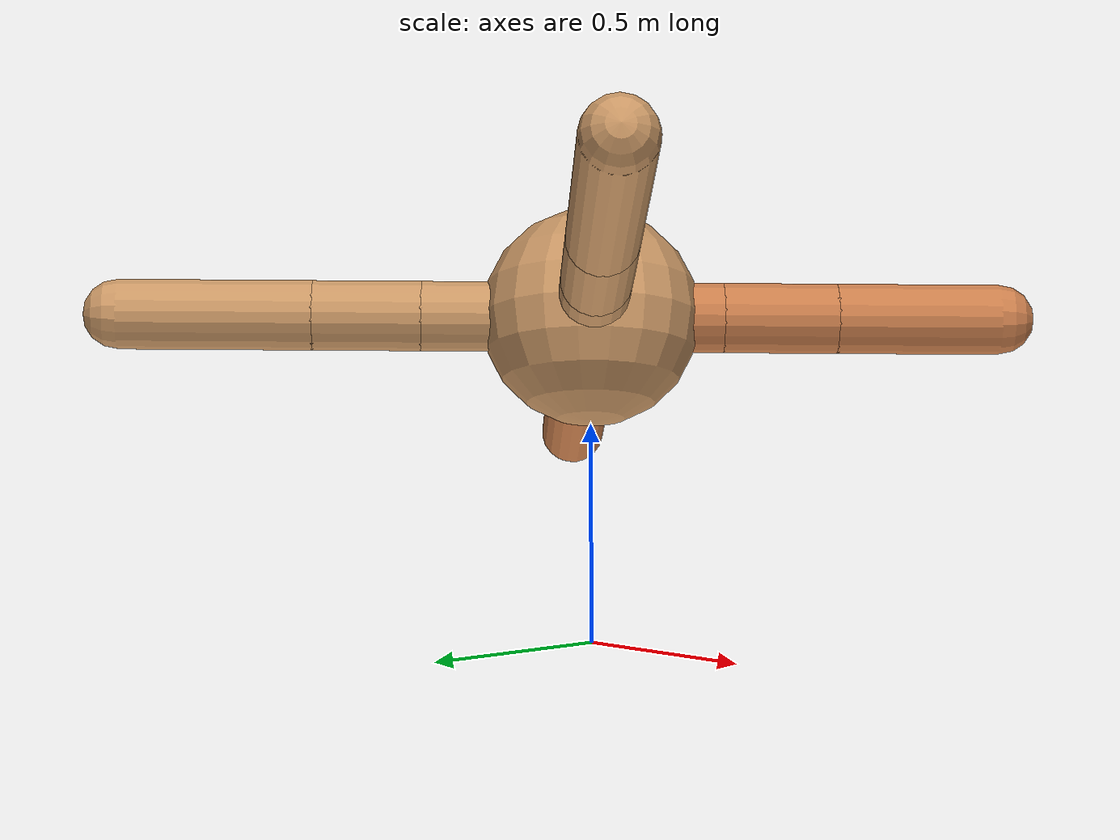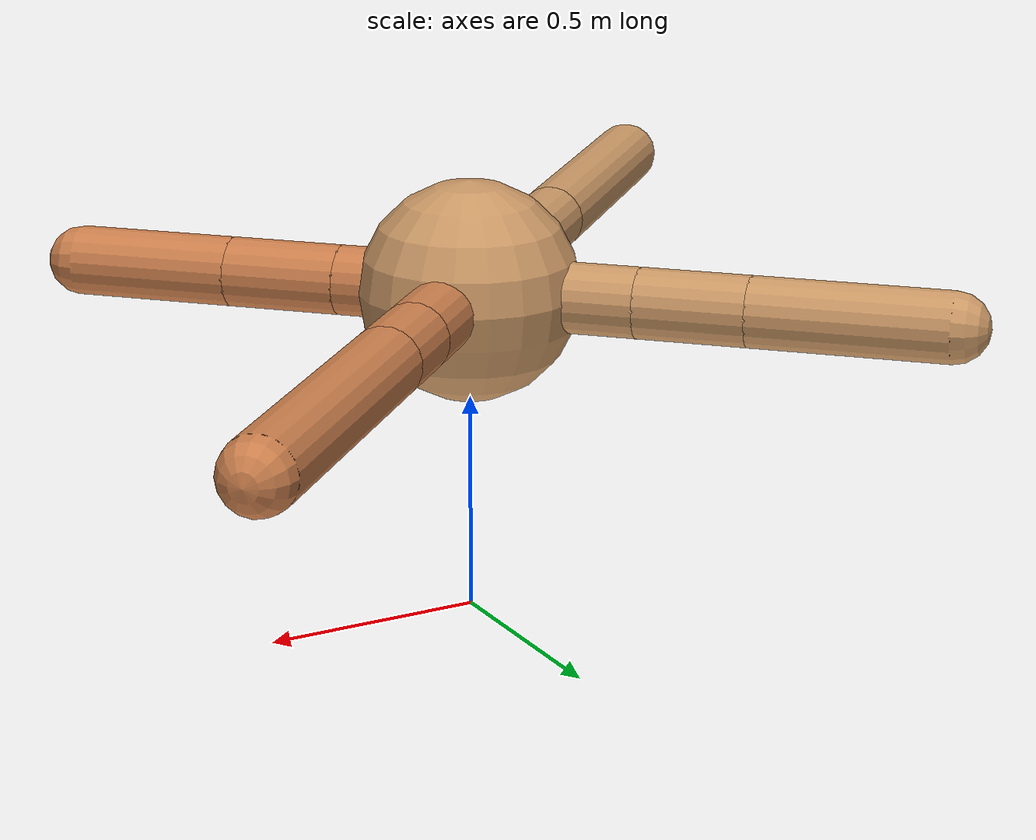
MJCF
<mujoco model="ant">
  <compiler angle="degree" coordinate="local" inertiafromgeom="true" />
  <option integrator="RK4" timestep="0.01" />
  <custom>
    <numeric data="0.0 0.0 0.55 1.0 0.0 0.0 0.0 0.0 1.0 0.0 -1.0 0.0 -1.0 0.0 1.0" name="init_qpos" />
  </custom>
  <default>
    <joint armature="1" damping="1" limited="true" />
    <geom conaffinity="0" condim="3" density="5.0" friction="1.5 0.1 0.1" margin="0.01" rgba="0.8 0.6 0.4 1" />
  </default>
  <worldbody>
    <body name="torso" pos="0 0 0.75">
      <geom name="torso_geom" pos="0 0 0" size="0.25" type="sphere" />

      <body name="front_left_leg" pos="0 0 0">
        <geom fromto="0.0 0.0 0.0 0.28372176741105315 0.28372176741105315 0.0" name="aux_1_geom" size="0.08" type="capsule" rgba=".8 .5 .3 1" />
        <body name="aux_1" pos="0.28372176741105315 0.28372176741105315 0.0">
          <joint axis="0 0 1" name="hip_1" pos="0.0 0.0 0.0" range="-40 40" type="hinge" />
          <geom fromto="0.0 0.0 0.0 0.13219401822761906 0.13219401822761906 0.0" name="left_leg_geom" size="0.08" type="capsule" rgba=".8 .5 .3 1" />
          <body pos="0.13219401822761906 0.13219401822761906 0.0" name="front_left_foot">
            <joint axis="-1 1 0" name="ankle_1" pos="0.0 0.0 0.0" range="30 100" type="hinge" />
            <geom fromto="0.0 0.0 0.0 0.5081226876047525 0.5081226876047525 0.0" name="left_ankle_geom" size="0.08" type="capsule" rgba=".8 .5 .3 1" />
          </body>
        </body>
      </body>
      <body name="front_right_leg" pos="0 0 0">
        <geom fromto="0.0 0.0 0.0 -0.2739222342706053 0.2739222342706053 0.0" name="aux_2_geom" size="0.08" type="capsule" />
        <body name="aux_2" pos="-0.2739222342706053 0.2739222342706053 0.0">
          <joint axis="0 0 1" name="hip_2" pos="0.0 0.0 0.0" range="-40 40" type="hinge" />
          <geom fromto="0.0 0.0 0.0 -0.17540354741210007 0.17540354741210007 0.0" name="right_leg_geom" size="0.08" type="capsule" />
          <body pos="-0.17540354741210007 0.17540354741210007 0.0" name="front_right_foot">
            <joint axis="1 1 0" name="ankle_2" pos="0.0 0.0 0.0" range="-100 -30" type="hinge" />
            <geom fromto="0.0 0.0 0.0 -0.3131598312621713 0.3131598312621713 0.0" name="right_ankle_geom" size="0.08" type="capsule" />
          </body>
        </body>
      </body>
      <body name="left_back_leg" pos="0 0 0">
        <geom fromto="0.0 0.0 0.0 -0.23800075504161217 -0.23800075504161217 0.0" name="aux_3_geom" size="0.08" type="capsule" />
        <body name="aux_3" pos="-0.23800075504161217 -0.23800075504161217 0.0">
          <joint axis="0 0 1" name="hip_3" pos="0.0 0.0 0.0" range="-40 40" type="hinge" />
          <geom fromto="0.0 0.0 0.0 -0.24752203578629517 -0.24752203578629517 0.0" name="back_leg_geom" size="0.08" type="capsule" />
          <body pos="-0.24752203578629517 -0.24752203578629517 0.0" name="left_back_foot">
            <joint axis="-1 1 0" name="ankle_3" pos="0.0 0.0 0.0" range="-100 -30" type="hinge" />
            <geom fromto="0.0 0.0 0.0 -0.5417080477247666 -0.5417080477247666 0.0" name="third_ankle_geom" size="0.08" type="capsule" />
          </body>
        </body>
      </body>
      <body name="right_back_leg" pos="0 0 0">
        <geom fromto="0.0 0.0 0.0 0.2143147261173927 -0.2143147261173927 0.0" name="aux_4_geom" size="0.08" type="capsule" rgba=".8 .5 .3 1" />
        <body name="aux_4" pos="0.2143147261173927 -0.2143147261173927 0.0">
          <joint axis="0 0 1" name="hip_4" pos="0.0 0.0 0.0" range="-40 40" type="hinge" />
          <geom fromto="0.0 0.0 0.0 0.1844894288386933 -0.1844894288386933 0.0" name="rightback_leg_geom" size="0.08" type="capsule" rgba=".8 .5 .3 1" />
          <body pos="0.1844894288386933 -0.1844894288386933 0.0" name="right_back_foot">
            <joint axis="1 1 0" name="ankle_4" pos="0.0 0.0 0.0" range="30 100" type="hinge" />
            <geom fromto="0.0 0.0 0.0 0.2634272971292399 -0.2634272971292399 0.0" name="fourth_ankle_geom" size="0.08" type="capsule" rgba=".8 .5 .3 1" />
          </body>
        </body>
      </body>
    </body>
  </worldbody>
  <actuator>
    <motor ctrllimited="true" ctrlrange="-1.0 1.0" joint="hip_4" gear="150" />
    <motor ctrllimited="true" ctrlrange="-1.0 1.0" joint="ankle_4" gear="150" />
    <motor ctrllimited="true" ctrlrange="-1.0 1.0" joint="hip_1" gear="150" />
    <motor ctrllimited="true" ctrlrange="-1.0 1.0" joint="ankle_1" gear="150" />
    <motor ctrllimited="true" ctrlrange="-1.0 1.0" joint="hip_2" gear="150" />
    <motor ctrllimited="true" ctrlrange="-1.0 1.0" joint="ankle_2" gear="150" />
    <motor ctrllimited="true" ctrlrange="-1.0 1.0" joint="hip_3" gear="150" />
    <motor ctrllimited="true" ctrlrange="-1.0 1.0" joint="ankle_3" gear="150" />
  </actuator>
</mujoco>
